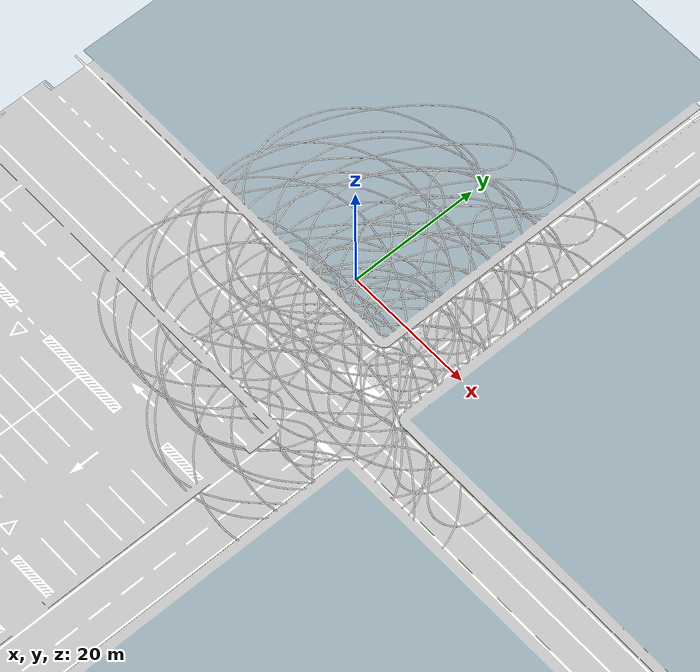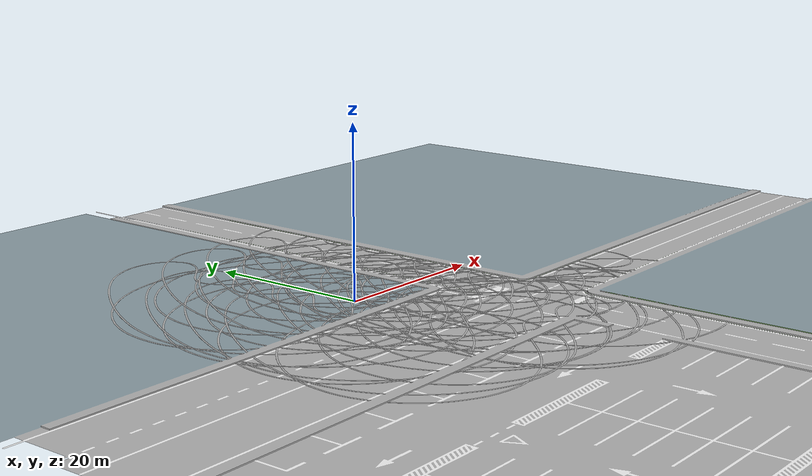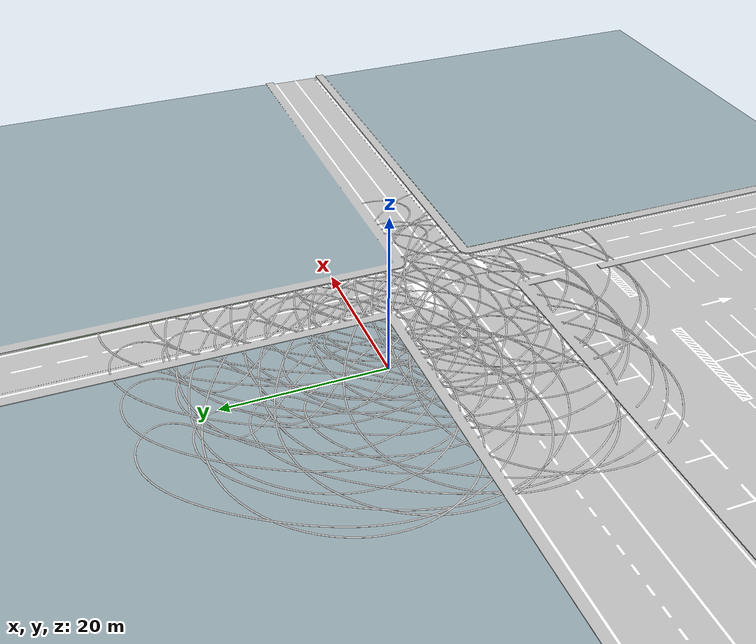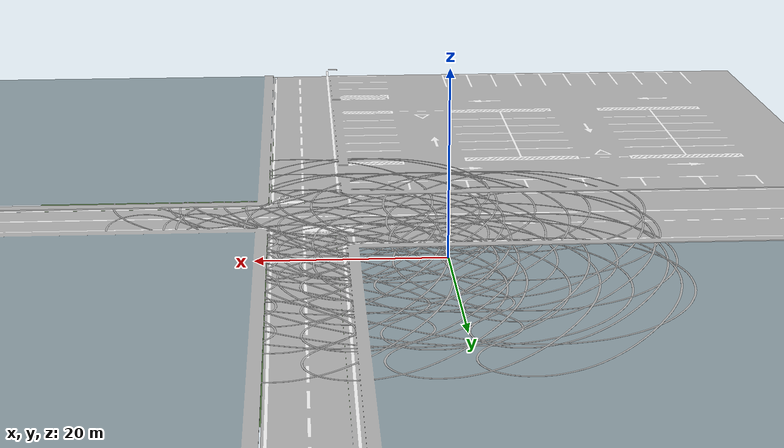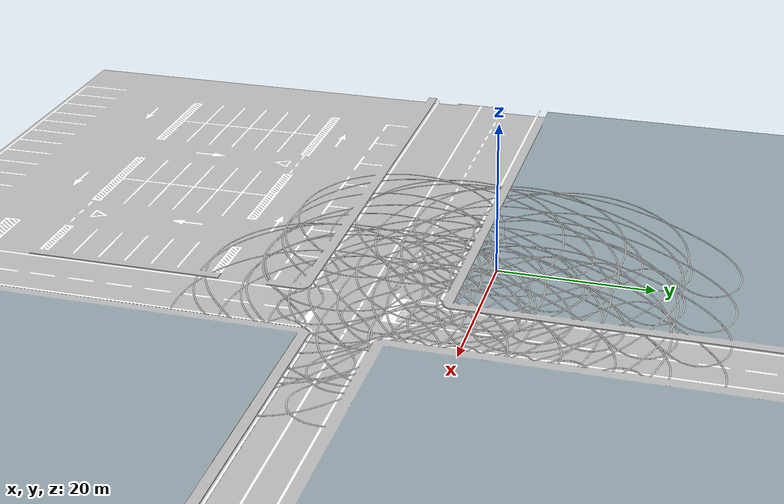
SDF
<sdf version="1.8">
 <world name="roadmap">
  <physics name="1ms" type="ignored">
   <max_step_size>0.001</max_step_size>
   <real_time_factor>1.0</real_time_factor>
  </physics>
  <plugin filename="ignition-gazebo-physics-system" name="ignition::gazebo::systems::Physics"/>
  <plugin filename="ignition-gazebo-scene-broadcaster-system" name="ignition::gazebo::systems::SceneBroadcaster"/>
  <plugin filename="ignition-gazebo-user-commands-system" name="ignition::gazebo::systems::UserCommands"/>
  <plugin filename="ignition-gazebo-sensors-system" name="ignition::gazebo::systems::Sensors">
   <render_engine>ogre</render_engine>
  </plugin>
  <atmosphere type="adiabatic"/>
  <light type="directional" name="sun">
   <pose>0 0 10 0 0 0</pose>
   <diffuse>0.9 0.9 0.85 1</diffuse>
   <specular>0.3 0.3 0.3 1</specular>
   <attenuation>
    <range>1000</range>
    <constant>0.9</constant>
    <linear>0.01</linear>
    <quadratic>0.001</quadratic>
   </attenuation>
   <direction>-0.5 0.1 -0.9</direction>
  </light>
  <light type="directional" name="ambient_fill">
   <cast_shadows>false</cast_shadows>
   <pose>0 0 20 0 0 0</pose>
   <diffuse>0.4 0.4 0.5 1</diffuse>
   <specular>0 0 0 1</specular>
   <direction>0.5 -0.1 -0.9</direction>
  </light>
  <model name="ground_plane">
   <static>true</static>
   <link name="link">
    <collision name="collision">
     <geometry><plane><normal>0 0 1</normal><size>200 200</size></plane></geometry>
     <surface><friction><ode><mu>0.9</mu><mu2>0.9</mu2></ode></friction></surface>
    </collision>
    <visual name="visual">
     <geometry><plane><normal>0 0 1</normal><size>200 200</size></plane></geometry>
     <material>
      <ambient>0.28 0.40 0.22 1</ambient>
      <diffuse>0.35 0.50 0.28 1</diffuse>
      <specular>0.05 0.05 0.05 1</specular>
     </material>
    </visual>
   </link>
  </model>
  <include><name>road_h0</name><uri>model://road</uri><pose>-7   9  0  0 0 0</pose></include>
  <include><name>road_h1</name><uri>model://road</uri><pose>-0.8 9  0  0 0 0</pose></include>
  <include><name>road_h2</name><uri>model://road</uri><pose>5.4 9  0  0 0 0</pose></include>
  <include><name>road_h3</name><uri>model://road</uri><pose>11.6 9  0  0 0 0</pose></include>
  <include><name>road_h4</name><uri>model://road</uri><pose>-7    0.9 0  0 0 0</pose></include>
  <include><name>road_h5</name><uri>model://road</uri><pose>-0.8  0.9 0  0 0 0</pose></include>
  <include><name>road_h6</name><uri>model://road</uri><pose>5.4  0.9 0  0 0 0</pose></include>
  <include><name>road_h7</name><uri>model://road</uri><pose>11.6  0.9 0  0 0 0</pose></include>
  <include><name>road_h8</name><uri>model://road</uri><pose>-7   -7.2 0  0 0 0</pose></include>
  <include><name>road_h9</name><uri>model://road</uri><pose>5.4 -7.2 0  0 0 0</pose></include>
  <include><name>road_h10</name><uri>model://road</uri><pose>11.6 -7.2 0  0 0 0</pose></include>
  <include><name>road_h11</name><uri>model://road</uri><pose>-7   -15.3 0  0 0 0</pose></include>
  <include><name>road_h12</name><uri>model://road</uri><pose>-0.8 -15.3 0  0 0 0</pose></include>
  <include><name>road_h13</name><uri>model://road</uri><pose>5.4 -15.3 0  0 0 0</pose></include>
  <include><name>road_h14</name><uri>model://road</uri><pose>11.6 -15.3 0  0 0 0</pose></include>
  <include><name>road_v0</name><uri>model://road</uri><pose>14.2 -7    0  0 0 1.5708</pose></include>
  <include><name>road_v1</name><uri>model://road</uri><pose>14.2 -0.8  0  0 0 1.5708</pose></include>
  <include><name>road_v2</name><uri>model://road</uri><pose>14.2  5.4  0  0 0 1.5708</pose></include>
  <include><name>road_v3</name><uri>model://road</uri><pose>14.2 -13.2 0  0 0 1.5708</pose></include>
  <include><name>road_v4</name><uri>model://road</uri><pose>6.8 -7    0  0 0 1.5708</pose></include>
  <include><name>road_v5</name><uri>model://road</uri><pose>6.8 -0.8  0  0 0 1.5708</pose></include>
  <include><name>road_v6</name><uri>model://road</uri><pose>6.8  5.4  0  0 0 1.5708</pose></include>
  <include><name>road_v7</name><uri>model://road</uri><pose>6.8 -13.2 0  0 0 1.5708</pose></include>
  <include><name>road_v8</name><uri>model://road</uri><pose>-0.5 -0.8  0  0 0 1.5708</pose></include>
  <include><name>road_v9</name><uri>model://road</uri><pose>-0.5  5.4  0  0 0 1.5708</pose></include>
  <include><name>road_v10</name><uri>model://road</uri><pose>-0.5 -13.2 0  0 0 1.5708</pose></include>
  <include><name>road_v11</name><uri>model://road</uri><pose>-8.65 -7    0  0 0 1.5708</pose></include>
  <include><name>road_v12</name><uri>model://road</uri><pose>-8.65 -0.8  0  0 0 1.5708</pose></include>
  <include><name>road_v13</name><uri>model://road</uri><pose>-8.65  5.4  0  0 0 1.5708</pose></include>
  <include><name>road_v14</name><uri>model://road</uri><pose>-8.65 -13.2 0  0 0 1.5708</pose></include>
  <include><name>road_park0</name><uri>model://road</uri><pose>14.2 -19.4 0  0 0 1.5708</pose></include>
  <include><name>road_park1</name><uri>model://road</uri><pose>6.8 -19.4 0  0 0 1.5708</pose></include>
  <include><name>road_park2</name><uri>model://road</uri><pose>9.9 -21.5 0  0 0 0</pose></include>
  <include><name>parking_0</name><uri>model://parking</uri><pose>14.8 -14   0  0 0 3.14159</pose></include>
 </world>
</sdf>

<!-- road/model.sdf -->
<sdf version="1.5">
    <model name="road">
        <static>true</static>
        <link name="link">
            <collision name="collision">
                <pose>0 0 0 0 0 0</pose>
                <geometry>
                    <mesh>
                        <uri>model://road/meshes/road.stl</uri>
                    </mesh>
                </geometry>
            </collision>
            <visual name="visual">

              <pose>0 0 0 0 0 0</pose>
              <geometry>
              <mesh>
                 <uri>model://road/meshes/road.dae</uri>
              </mesh>
              </geometry>

              <material>
                  <script>
                      <uri>model://road/materials/scripts</uri>
                      <uri>model://road/materials/textures</uri>
                      <name>roadMat/Diffuse</name>
                  </script>
              </material>
             </visual>

        </link>
    </model>
</sdf>

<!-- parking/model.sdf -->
<sdf version="1.5">
  <model name="stop">
    <static>true</static>
    <link name="link">
      <collision name="collision">
        <geometry>
          <plane>
            <normal>0 0 1</normal>
            <size>100 100</size>
          </plane>
        </geometry>
      </collision>
      <visual name="visual">
        <geometry>
          <mesh>
	          <uri>model://parking/meshes/parking.dae</uri>
            <scale>1.3 1.3 1.3</scale>
          </mesh>
        </geometry>
      </visual>
    </link>
  </model>
</sdf>
